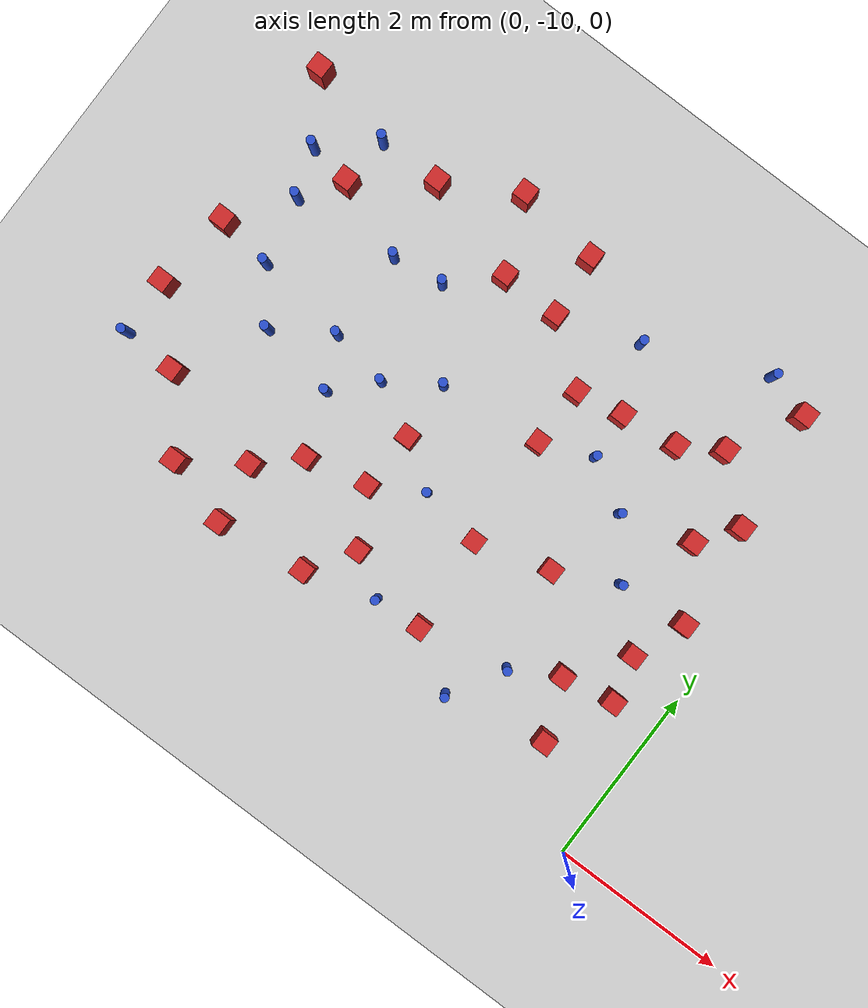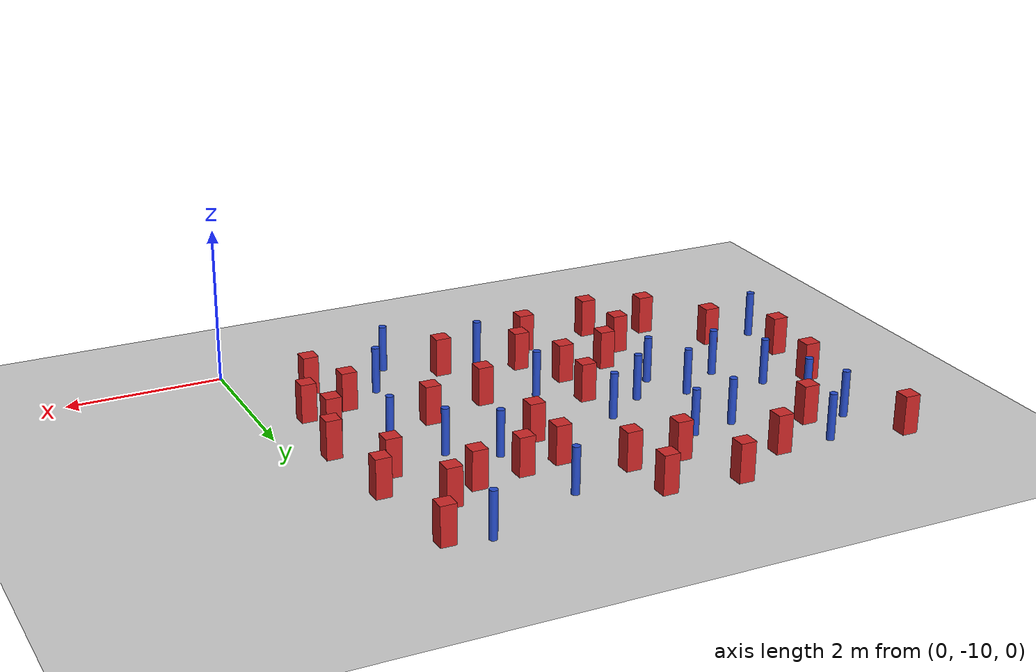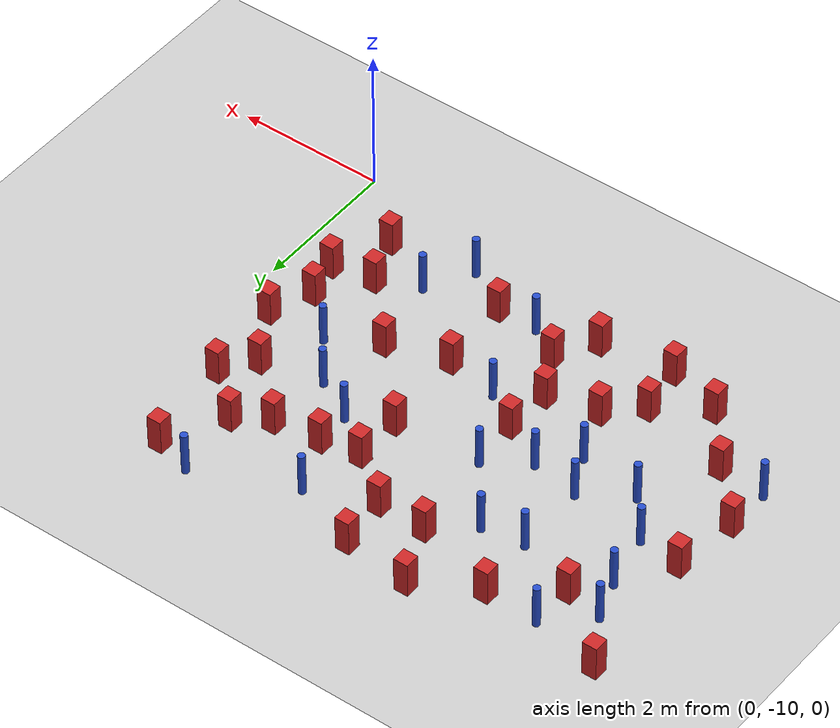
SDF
<sdf version="1.6">
 <world name="default">
  <model name="ground_plane">
   <static>1</static>
   <link name="link">
    <collision name="collision">
     <geometry><plane><normal>0 0 1</normal><size>100 100</size></plane></geometry>
     <surface><friction><ode><mu>100</mu><mu2>50</mu2></ode></friction></surface>
    </collision>
    <visual name="visual">
     <cast_shadows>0</cast_shadows>
     <geometry><plane><normal>0 0 1</normal><size>100 100</size></plane></geometry>
     <material>
      <ambient>1.0 1.0 1.0 1.0</ambient>
      <diffuse>0.8 0.8 0.8 1.0</diffuse>
      <specular>0.01 0.01 0.01 1.000000</specular>
     </material>
    </visual>
   </link>
  </model>
  <model name="square_post_obstacle11">
   <static>true</static>
   <pose>-0.571022109783 -8.41321369358 1.91545236811e-07 -7.35059704564e-06 1.12565212e-07 2.39332434364e-05</pose>
   <link name="link">
    <pose>0 0 0.25 0 -0 0</pose>
    <inertial>
     <mass>100</mass>
     <inertia>
      <ixx>0.166667</ixx>
      <ixy>0</ixy>
      <ixz>0</ixz>
      <iyy>0.166667</iyy>
      <iyz>0</iyz>
      <izz>0.166667</izz>
     </inertia>
    </inertial>
    <collision name="collision"><geometry><box><size>.2 .2 .5</size></box></geometry></collision>
    <visual name="visual">
     <geometry><box><size>.2 .2 .5</size></box></geometry>
     <material>
      <script><name>Gazebo/Red</name><uri>file://media/materials/scripts/gazebo.material</uri></script>
     </material>
    </visual>
   </link>
  </model>
  <model name="square_post_obstacle12">
   <static>true</static>
   <pose>-0.468949970906 -7.32807903634 1.91545236811e-07 -7.35059704564e-06 1.12565212e-07 2.39332434364e-05</pose>
   <link name="link">
    <pose>0 0 0.25 0 -0 0</pose>
    <inertial>
     <mass>100</mass>
     <inertia>
      <ixx>0.166667</ixx>
      <ixy>0</ixy>
      <ixz>0</ixz>
      <iyy>0.166667</iyy>
      <iyz>0</iyz>
      <izz>0.166667</izz>
     </inertia>
    </inertial>
    <collision name="collision"><geometry><box><size>.2 .2 .5</size></box></geometry></collision>
    <visual name="visual">
     <geometry><box><size>.2 .2 .5</size></box></geometry>
     <material>
      <script><name>Gazebo/Red</name><uri>file://media/materials/scripts/gazebo.material</uri></script>
     </material>
    </visual>
   </link>
  </model>
  <model name="square_post_obstacle25">
   <static>true</static>
   <pose>-1.22432231894 -5.6341398874 1.91545236811e-07 -7.35059704564e-06 1.12565212e-07 2.39332434364e-05</pose>
   <link name="link">
    <pose>0 0 0.25 0 -0 0</pose>
    <inertial>
     <mass>100</mass>
     <inertia>
      <ixx>0.166667</ixx>
      <ixy>0</ixy>
      <ixz>0</ixz>
      <iyy>0.166667</iyy>
      <iyz>0</iyz>
      <izz>0.166667</izz>
     </inertia>
    </inertial>
    <collision name="collision"><geometry><box><size>.2 .2 .5</size></box></geometry></collision>
    <visual name="visual">
     <geometry><box><size>.2 .2 .5</size></box></geometry>
     <material>
      <script><name>Gazebo/Red</name><uri>file://media/materials/scripts/gazebo.material</uri></script>
     </material>
    </visual>
   </link>
  </model>
  <model name="pole_obstacle34">
   <static>true</static>
   <pose>-5.18293998656 -6.10915039756 7.38925637345e-09 -8.47170692796e-08 1.24976764786e-08 -1.74513093032e-07</pose>
   <link name="link">
    <pose>0 0 0.3 0 -0 0</pose>
    <inertial>
     <mass>1</mass>
     <inertia><ixx>0.145833</ixx><ixy>0</ixy><ixz>0</ixz><iyy>0.145833</iyy><iyz>0</iyz><izz>0.125</izz></inertia>
    </inertial>
    <collision name="collision">
     <geometry><cylinder><radius>0.05</radius><length>.6</length></cylinder></geometry>
    </collision>
    <visual name="visual">
     <geometry><cylinder><radius>0.05</radius><length>.6</length></cylinder></geometry>
     <material>
      <script><name>Gazebo/Blue</name><uri>file://media/materials/scripts/gazebo.material</uri></script>
     </material>
    </visual>
   </link>
  </model>
  <model name="square_post_obstacle51">
   <static>true</static>
   <pose>-3.95636058278 -8.16810250475 1.91545236811e-07 -7.35059704564e-06 1.12565212e-07 2.39332434364e-05</pose>
   <link name="link">
    <pose>0 0 0.25 0 -0 0</pose>
    <inertial>
     <mass>100</mass>
     <inertia>
      <ixx>0.166667</ixx>
      <ixy>0</ixy>
      <ixz>0</ixz>
      <iyy>0.166667</iyy>
      <iyz>0</iyz>
      <izz>0.166667</izz>
     </inertia>
    </inertial>
    <collision name="collision"><geometry><box><size>.2 .2 .5</size></box></geometry></collision>
    <visual name="visual">
     <geometry><box><size>.2 .2 .5</size></box></geometry>
     <material>
      <script><name>Gazebo/Red</name><uri>file://media/materials/scripts/gazebo.material</uri></script>
     </material>
    </visual>
   </link>
  </model>
  <model name="square_post_obstacle53">
   <static>true</static>
   <pose>-1.90715955474 -7.71940245238 1.91545236811e-07 -7.35059704564e-06 1.12565212e-07 2.39332434364e-05</pose>
   <link name="link">
    <pose>0 0 0.25 0 -0 0</pose>
    <inertial>
     <mass>100</mass>
     <inertia>
      <ixx>0.166667</ixx>
      <ixy>0</ixy>
      <ixz>0</ixz>
      <iyy>0.166667</iyy>
      <iyz>0</iyz>
      <izz>0.166667</izz>
     </inertia>
    </inertial>
    <collision name="collision"><geometry><box><size>.2 .2 .5</size></box></geometry></collision>
    <visual name="visual">
     <geometry><box><size>.2 .2 .5</size></box></geometry>
     <material>
      <script><name>Gazebo/Red</name><uri>file://media/materials/scripts/gazebo.material</uri></script>
     </material>
    </visual>
   </link>
  </model>
  <model name="square_post_obstacle58">
   <static>true</static>
   <pose>-0.793374174693 -4.85994989848 1.91545236811e-07 -7.35059704564e-06 1.12565212e-07 2.39332434364e-05</pose>
   <link name="link">
    <pose>0 0 0.25 0 -0 0</pose>
    <inertial>
     <mass>100</mass>
     <inertia>
      <ixx>0.166667</ixx>
      <ixy>0</ixy>
      <ixz>0</ixz>
      <iyy>0.166667</iyy>
      <iyz>0</iyz>
      <izz>0.166667</izz>
     </inertia>
    </inertial>
    <collision name="collision"><geometry><box><size>.2 .2 .5</size></box></geometry></collision>
    <visual name="visual">
     <geometry><box><size>.2 .2 .5</size></box></geometry>
     <material>
      <script><name>Gazebo/Red</name><uri>file://media/materials/scripts/gazebo.material</uri></script>
     </material>
    </visual>
   </link>
  </model>
  <model name="square_post_obstacle66">
   <static>true</static>
   <pose>-2.81780212315 -6.73955782341 1.91545236811e-07 -7.35059704564e-06 1.12565212e-07 2.39332434364e-05</pose>
   <link name="link">
    <pose>0 0 0.25 0 -0 0</pose>
    <inertial>
     <mass>100</mass>
     <inertia>
      <ixx>0.166667</ixx>
      <ixy>0</ixy>
      <ixz>0</ixz>
      <iyy>0.166667</iyy>
      <iyz>0</iyz>
      <izz>0.166667</izz>
     </inertia>
    </inertial>
    <collision name="collision"><geometry><box><size>.2 .2 .5</size></box></geometry></collision>
    <visual name="visual">
     <geometry><box><size>.2 .2 .5</size></box></geometry>
     <material>
      <script><name>Gazebo/Red</name><uri>file://media/materials/scripts/gazebo.material</uri></script>
     </material>
    </visual>
   </link>
  </model>
  <model name="pole_obstacle66">
   <static>true</static>
   <pose>-4.50512319719 -7.22049295974 7.38925637345e-09 -8.47170692796e-08 1.24976764786e-08 -1.74513093032e-07</pose>
   <link name="link">
    <pose>0 0 0.3 0 -0 0</pose>
    <inertial>
     <mass>1</mass>
     <inertia><ixx>0.145833</ixx><ixy>0</ixy><ixz>0</ixz><iyy>0.145833</iyy><iyz>0</iyz><izz>0.125</izz></inertia>
    </inertial>
    <collision name="collision">
     <geometry><cylinder><radius>0.05</radius><length>.6</length></cylinder></geometry>
    </collision>
    <visual name="visual">
     <geometry><cylinder><radius>0.05</radius><length>.6</length></cylinder></geometry>
     <material>
      <script><name>Gazebo/Blue</name><uri>file://media/materials/scripts/gazebo.material</uri></script>
     </material>
    </visual>
   </link>
  </model>
  <model name="pole_obstacle67">
   <static>true</static>
   <pose>-1.2402873028 -7.39377180284 7.38925637345e-09 -8.47170692799e-08 1.24976765033e-08 -1.74513093018e-07</pose>
   <link name="link">
    <pose>0 0 0.3 0 -0 0</pose>
    <inertial>
     <mass>1</mass>
     <inertia><ixx>0.145833</ixx><ixy>0</ixy><ixz>0</ixz><iyy>0.145833</iyy><iyz>0</iyz><izz>0.125</izz></inertia>
    </inertial>
    <collision name="collision">
     <geometry><cylinder><radius>0.05</radius><length>.6</length></cylinder></geometry>
    </collision>
    <visual name="visual">
     <geometry><cylinder><radius>0.05</radius><length>.6</length></cylinder></geometry>
     <material>
      <script><name>Gazebo/Blue</name><uri>file://media/materials/scripts/gazebo.material</uri></script>
     </material>
    </visual>
   </link>
  </model>
  <model name="pole_obstacle71">
   <static>true</static>
   <pose>-2.58937279768 -5.26832056978 7.38925637345e-09 -8.47170692798e-08 1.24976765033e-08 -1.74513093019e-07</pose>
   <link name="link">
    <pose>0 0 0.3 0 -0 0</pose>
    <inertial>
     <mass>1</mass>
     <inertia><ixx>0.145833</ixx><ixy>0</ixy><ixz>0</ixz><iyy>0.145833</iyy><iyz>0</iyz><izz>0.125</izz></inertia>
    </inertial>
    <collision name="collision">
     <geometry><cylinder><radius>0.05</radius><length>.6</length></cylinder></geometry>
    </collision>
    <visual name="visual">
     <geometry><cylinder><radius>0.05</radius><length>.6</length></cylinder></geometry>
     <material>
      <script><name>Gazebo/Blue</name><uri>file://media/materials/scripts/gazebo.material</uri></script>
     </material>
    </visual>
   </link>
  </model>
  <model name="square_post_obstacle77">
   <static>true</static>
   <pose>-3.47305103556 -5.58351981597 1.91545236811e-07 -7.35059704564e-06 1.12565212e-07 2.39332434364e-05</pose>
   <link name="link">
    <pose>0 0 0.25 0 -0 0</pose>
    <inertial>
     <mass>100</mass>
     <inertia>
      <ixx>0.166667</ixx>
      <ixy>0</ixy>
      <ixz>0</ixz>
      <iyy>0.166667</iyy>
      <iyz>0</iyz>
      <izz>0.166667</izz>
     </inertia>
    </inertial>
    <collision name="collision"><geometry><box><size>.2 .2 .5</size></box></geometry></collision>
    <visual name="visual">
     <geometry><box><size>.2 .2 .5</size></box></geometry>
     <material>
      <script><name>Gazebo/Red</name><uri>file://media/materials/scripts/gazebo.material</uri></script>
     </material>
    </visual>
   </link>
  </model>
  <model name="square_post_obstacle78">
   <static>true</static>
   <pose>-3.92877305239 -7.51560341782 1.91545236811e-07 -7.35059704564e-06 1.12565212e-07 2.39332434364e-05</pose>
   <link name="link">
    <pose>0 0 0.25 0 -0 0</pose>
    <inertial>
     <mass>100</mass>
     <inertia>
      <ixx>0.166667</ixx>
      <ixy>0</ixy>
      <ixz>0</ixz>
      <iyy>0.166667</iyy>
      <iyz>0</iyz>
      <izz>0.166667</izz>
     </inertia>
    </inertial>
    <collision name="collision"><geometry><box><size>.2 .2 .5</size></box></geometry></collision>
    <visual name="visual">
     <geometry><box><size>.2 .2 .5</size></box></geometry>
     <material>
      <script><name>Gazebo/Red</name><uri>file://media/materials/scripts/gazebo.material</uri></script>
     </material>
    </visual>
   </link>
  </model>
  <model name="pole_obstacle84">
   <static>true</static>
   <pose>-5.77172066001 -7.50001097558 7.38925637345e-09 -8.47170692796e-08 1.24976764786e-08 -1.74513093032e-07</pose>
   <link name="link">
    <pose>0 0 0.3 0 -0 0</pose>
    <inertial>
     <mass>1</mass>
     <inertia><ixx>0.145833</ixx><ixy>0</ixy><ixz>0</ixz><iyy>0.145833</iyy><iyz>0</iyz><izz>0.125</izz></inertia>
    </inertial>
    <collision name="collision">
     <geometry><cylinder><radius>0.05</radius><length>.6</length></cylinder></geometry>
    </collision>
    <visual name="visual">
     <geometry><cylinder><radius>0.05</radius><length>.6</length></cylinder></geometry>
     <material>
      <script><name>Gazebo/Blue</name><uri>file://media/materials/scripts/gazebo.material</uri></script>
     </material>
    </visual>
   </link>
  </model>
  <model name="pole_obstacle93">
   <static>true</static>
   <pose>-3.96376057896 -6.85901524034 7.38925637345e-09 -8.47170692799e-08 1.24976764985e-08 -1.74513093022e-07</pose>
   <link name="link">
    <pose>0 0 0.3 0 -0 0</pose>
    <inertial>
     <mass>1</mass>
     <inertia><ixx>0.145833</ixx><ixy>0</ixy><ixz>0</ixz><iyy>0.145833</iyy><iyz>0</iyz><izz>0.125</izz></inertia>
    </inertial>
    <collision name="collision">
     <geometry><cylinder><radius>0.05</radius><length>.6</length></cylinder></geometry>
    </collision>
    <visual name="visual">
     <geometry><cylinder><radius>0.05</radius><length>.6</length></cylinder></geometry>
     <material>
      <script><name>Gazebo/Blue</name><uri>file://media/materials/scripts/gazebo.material</uri></script>
     </material>
    </visual>
   </link>
  </model>
  <model name="pole_obstacle95">
   <static>true</static>
   <pose>-5.16107700538 -7.10729640893 7.38925637345e-09 -8.47170692796e-08 1.24976764786e-08 -1.74513093032e-07</pose>
   <link name="link">
    <pose>0 0 0.3 0 -0 0</pose>
    <inertial>
     <mass>1</mass>
     <inertia><ixx>0.145833</ixx><ixy>0</ixy><ixz>0</ixz><iyy>0.145833</iyy><iyz>0</iyz><izz>0.125</izz></inertia>
    </inertial>
    <collision name="collision">
     <geometry><cylinder><radius>0.05</radius><length>.6</length></cylinder></geometry>
    </collision>
    <visual name="visual">
     <geometry><cylinder><radius>0.05</radius><length>.6</length></cylinder></geometry>
     <material>
      <script><name>Gazebo/Blue</name><uri>file://media/materials/scripts/gazebo.material</uri></script>
     </material>
    </visual>
   </link>
  </model>
  <model name="pole_obstacle105">
   <static>true</static>
   <pose>-2.00025541509 -9.41404464523 7.38925637345e-09 -8.47170692797e-08 1.24976764827e-08 -1.7451309303e-07</pose>
   <link name="link">
    <pose>0 0 0.3 0 -0 0</pose>
    <inertial>
     <mass>1</mass>
     <inertia><ixx>0.145833</ixx><ixy>0</ixy><ixz>0</ixz><iyy>0.145833</iyy><iyz>0</iyz><izz>0.125</izz></inertia>
    </inertial>
    <collision name="collision">
     <geometry><cylinder><radius>0.05</radius><length>.6</length></cylinder></geometry>
    </collision>
    <visual name="visual">
     <geometry><cylinder><radius>0.05</radius><length>.6</length></cylinder></geometry>
     <material>
      <script><name>Gazebo/Blue</name><uri>file://media/materials/scripts/gazebo.material</uri></script>
     </material>
    </visual>
   </link>
  </model>
  <model name="square_post_obstacle94">
   <static>true</static>
   <pose>-4.64003024459 -8.32204726033 1.91545236811e-07 -7.35059704564e-06 1.12565212e-07 2.39332434364e-05</pose>
   <link name="link">
    <pose>0 0 0.25 0 -0 0</pose>
    <inertial>
     <mass>100</mass>
     <inertia>
      <ixx>0.166667</ixx>
      <ixy>0</ixy>
      <ixz>0</ixz>
      <iyy>0.166667</iyy>
      <iyz>0</iyz>
      <izz>0.166667</izz>
     </inertia>
    </inertial>
    <collision name="collision"><geometry><box><size>.2 .2 .5</size></box></geometry></collision>
    <visual name="visual">
     <geometry><box><size>.2 .2 .5</size></box></geometry>
     <material>
      <script><name>Gazebo/Red</name><uri>file://media/materials/scripts/gazebo.material</uri></script>
     </material>
    </visual>
   </link>
  </model>
  <model name="pole_obstacle111">
   <static>true</static>
   <pose>-3.16768590234 -9.05173276898 7.38925637345e-09 -8.47170692799e-08 1.24976765012e-08 -1.74513093021e-07</pose>
   <link name="link">
    <pose>0 0 0.3 0 -0 0</pose>
    <inertial>
     <mass>1</mass>
     <inertia><ixx>0.145833</ixx><ixy>0</ixy><ixz>0</ixz><iyy>0.145833</iyy><iyz>0</iyz><izz>0.125</izz></inertia>
    </inertial>
    <collision name="collision">
     <geometry><cylinder><radius>0.05</radius><length>.6</length></cylinder></geometry>
    </collision>
    <visual name="visual">
     <geometry><cylinder><radius>0.05</radius><length>.6</length></cylinder></geometry>
     <material>
      <script><name>Gazebo/Blue</name><uri>file://media/materials/scripts/gazebo.material</uri></script>
     </material>
    </visual>
   </link>
  </model>
  <model name="square_post_obstacle99">
   <static>true</static>
   <pose>-6.94925173807 -5.0274709046 1.91545236811e-07 -7.35059704564e-06 1.12565212e-07 2.39332434364e-05</pose>
   <link name="link">
    <pose>0 0 0.25 0 -0 0</pose>
    <inertial>
     <mass>100</mass>
     <inertia>
      <ixx>0.166667</ixx>
      <ixy>0</ixy>
      <ixz>0</ixz>
      <iyy>0.166667</iyy>
      <iyz>0</iyz>
      <izz>0.166667</izz>
     </inertia>
    </inertial>
    <collision name="collision"><geometry><box><size>.2 .2 .5</size></box></geometry></collision>
    <visual name="visual">
     <geometry><box><size>.2 .2 .5</size></box></geometry>
     <material>
      <script><name>Gazebo/Red</name><uri>file://media/materials/scripts/gazebo.material</uri></script>
     </material>
    </visual>
   </link>
  </model>
  <model name="pole_obstacle117">
   <static>true</static>
   <pose>-6.91897444432 -8.41020641659 7.38925637345e-09 -8.471706928e-08 1.24976765081e-08 -1.74513093015e-07</pose>
   <link name="link">
    <pose>0 0 0.3 0 -0 0</pose>
    <inertial>
     <mass>1</mass>
     <inertia><ixx>0.145833</ixx><ixy>0</ixy><ixz>0</ixz><iyy>0.145833</iyy><iyz>0</iyz><izz>0.125</izz></inertia>
    </inertial>
    <collision name="collision">
     <geometry><cylinder><radius>0.05</radius><length>.6</length></cylinder></geometry>
    </collision>
    <visual name="visual">
     <geometry><cylinder><radius>0.05</radius><length>.6</length></cylinder></geometry>
     <material>
      <script><name>Gazebo/Blue</name><uri>file://media/materials/scripts/gazebo.material</uri></script>
     </material>
    </visual>
   </link>
  </model>
  <model name="pole_obstacle118">
   <static>true</static>
   <pose>-4.89731174849 -7.64854874305 7.38925637345e-09 -8.47170692796e-08 1.24976764786e-08 -1.74513093032e-07</pose>
   <link name="link">
    <pose>0 0 0.3 0 -0 0</pose>
    <inertial>
     <mass>1</mass>
     <inertia><ixx>0.145833</ixx><ixy>0</ixy><ixz>0</ixz><iyy>0.145833</iyy><iyz>0</iyz><izz>0.125</izz></inertia>
    </inertial>
    <collision name="collision">
     <geometry><cylinder><radius>0.05</radius><length>.6</length></cylinder></geometry>
    </collision>
    <visual name="visual">
     <geometry><cylinder><radius>0.05</radius><length>.6</length></cylinder></geometry>
     <material>
      <script><name>Gazebo/Blue</name><uri>file://media/materials/scripts/gazebo.material</uri></script>
     </material>
    </visual>
   </link>
  </model>
  <model name="pole_obstacle120">
   <static>true</static>
   <pose>-2.25642821046 -6.49770897405 7.38925637345e-09 -8.47170692798e-08 1.24976765033e-08 -1.74513093019e-07</pose>
   <link name="link">
    <pose>0 0 0.3 0 -0 0</pose>
    <inertial>
     <mass>1</mass>
     <inertia><ixx>0.145833</ixx><ixy>0</ixy><ixz>0</ixz><iyy>0.145833</iyy><iyz>0</iyz><izz>0.125</izz></inertia>
    </inertial>
    <collision name="collision">
     <geometry><cylinder><radius>0.05</radius><length>.6</length></cylinder></geometry>
    </collision>
    <visual name="visual">
     <geometry><cylinder><radius>0.05</radius><length>.6</length></cylinder></geometry>
     <material>
      <script><name>Gazebo/Blue</name><uri>file://media/materials/scripts/gazebo.material</uri></script>
     </material>
    </visual>
   </link>
  </model>
  <model name="square_post_obstacle115">
   <static>true</static>
   <pose>-4.47984360777 -4.77758022825 1.91545236811e-07 -7.35059704564e-06 1.12565212e-07 2.39332434364e-05</pose>
   <link name="link">
    <pose>0 0 0.25 0 -0 0</pose>
    <inertial>
     <mass>100</mass>
     <inertia>
      <ixx>0.166667</ixx>
      <ixy>0</ixy>
      <ixz>0</ixz>
      <iyy>0.166667</iyy>
      <iyz>0</iyz>
      <izz>0.166667</izz>
     </inertia>
    </inertial>
    <collision name="collision"><geometry><box><size>.2 .2 .5</size></box></geometry></collision>
    <visual name="visual">
     <geometry><box><size>.2 .2 .5</size></box></geometry>
     <material>
      <script><name>Gazebo/Red</name><uri>file://media/materials/scripts/gazebo.material</uri></script>
     </material>
    </visual>
   </link>
  </model>
  <model name="pole_obstacle137">
   <static>true</static>
   <pose>-3.41981864162 -7.85295257021 7.38925637345e-09 -8.47170692794e-08 1.24976764468e-08 -1.7451309304e-07</pose>
   <link name="link">
    <pose>0 0 0.3 0 -0 0</pose>
    <inertial>
     <mass>1</mass>
     <inertia><ixx>0.145833</ixx><ixy>0</ixy><ixz>0</ixz><iyy>0.145833</iyy><iyz>0</iyz><izz>0.125</izz></inertia>
    </inertial>
    <collision name="collision">
     <geometry><cylinder><radius>0.05</radius><length>.6</length></cylinder></geometry>
    </collision>
    <visual name="visual">
     <geometry><cylinder><radius>0.05</radius><length>.6</length></cylinder></geometry>
     <material>
      <script><name>Gazebo/Blue</name><uri>file://media/materials/scripts/gazebo.material</uri></script>
     </material>
    </visual>
   </link>
  </model>
  <model name="square_post_obstacle124">
   <static>true</static>
   <pose>-5.28424427471 -5.22292484134 1.91545236811e-07 -7.35059704564e-06 1.12565212e-07 2.39332434364e-05</pose>
   <link name="link">
    <pose>0 0 0.25 0 -0 0</pose>
    <inertial>
     <mass>100</mass>
     <inertia>
      <ixx>0.166667</ixx>
      <ixy>0</ixy>
      <ixz>0</ixz>
      <iyy>0.166667</iyy>
      <iyz>0</iyz>
      <izz>0.166667</izz>
     </inertia>
    </inertial>
    <collision name="collision"><geometry><box><size>.2 .2 .5</size></box></geometry></collision>
    <visual name="visual">
     <geometry><box><size>.2 .2 .5</size></box></geometry>
     <material>
      <script><name>Gazebo/Red</name><uri>file://media/materials/scripts/gazebo.material</uri></script>
     </material>
    </visual>
   </link>
  </model>
  <model name="square_post_obstacle128">
   <static>true</static>
   <pose>-4.94777632473 -9.39955459858 1.91545236811e-07 -7.35059704564e-06 1.12565212e-07 2.39332434364e-05</pose>
   <link name="link">
    <pose>0 0 0.25 0 -0 0</pose>
    <inertial>
     <mass>100</mass>
     <inertia>
      <ixx>0.166667</ixx>
      <ixy>0</ixy>
      <ixz>0</ixz>
      <iyy>0.166667</iyy>
      <iyz>0</iyz>
      <izz>0.166667</izz>
     </inertia>
    </inertial>
    <collision name="collision"><geometry><box><size>.2 .2 .5</size></box></geometry></collision>
    <visual name="visual">
     <geometry><box><size>.2 .2 .5</size></box></geometry>
     <material>
      <script><name>Gazebo/Red</name><uri>file://media/materials/scripts/gazebo.material</uri></script>
     </material>
    </visual>
   </link>
  </model>
  <model name="square_post_obstacle133">
   <static>true</static>
   <pose>-2.81794915233 -6.07907795071 1.91545236811e-07 -7.35059704564e-06 1.12565212e-07 2.39332434364e-05</pose>
   <link name="link">
    <pose>0 0 0.25 0 -0 0</pose>
    <inertial>
     <mass>100</mass>
     <inertia>
      <ixx>0.166667</ixx>
      <ixy>0</ixy>
      <ixz>0</ixz>
      <iyy>0.166667</iyy>
      <iyz>0</iyz>
      <izz>0.166667</izz>
     </inertia>
    </inertial>
    <collision name="collision"><geometry><box><size>.2 .2 .5</size></box></geometry></collision>
    <visual name="visual">
     <geometry><box><size>.2 .2 .5</size></box></geometry>
     <material>
      <script><name>Gazebo/Red</name><uri>file://media/materials/scripts/gazebo.material</uri></script>
     </material>
    </visual>
   </link>
  </model>
  <model name="square_post_obstacle134">
   <static>true</static>
   <pose>-6.03600251011 -5.78713162122 1.91545236811e-07 -7.35059704564e-06 1.12565212e-07 2.39332434364e-05</pose>
   <link name="link">
    <pose>0 0 0.25 0 -0 0</pose>
    <inertial>
     <mass>100</mass>
     <inertia>
      <ixx>0.166667</ixx>
      <ixy>0</ixy>
      <ixz>0</ixz>
      <iyy>0.166667</iyy>
      <iyz>0</iyz>
      <izz>0.166667</izz>
     </inertia>
    </inertial>
    <collision name="collision"><geometry><box><size>.2 .2 .5</size></box></geometry></collision>
    <visual name="visual">
     <geometry><box><size>.2 .2 .5</size></box></geometry>
     <material>
      <script><name>Gazebo/Red</name><uri>file://media/materials/scripts/gazebo.material</uri></script>
     </material>
    </visual>
   </link>
  </model>
  <model name="square_post_obstacle136">
   <static>true</static>
   <pose>-2.72603088471 -7.95929535682 1.91545236811e-07 -7.35059704564e-06 1.12565212e-07 2.39332434364e-05</pose>
   <link name="link">
    <pose>0 0 0.25 0 -0 0</pose>
    <inertial>
     <mass>100</mass>
     <inertia>
      <ixx>0.166667</ixx>
      <ixy>0</ixy>
      <ixz>0</ixz>
      <iyy>0.166667</iyy>
      <iyz>0</iyz>
      <izz>0.166667</izz>
     </inertia>
    </inertial>
    <collision name="collision"><geometry><box><size>.2 .2 .5</size></box></geometry></collision>
    <visual name="visual">
     <geometry><box><size>.2 .2 .5</size></box></geometry>
     <material>
      <script><name>Gazebo/Red</name><uri>file://media/materials/scripts/gazebo.material</uri></script>
     </material>
    </visual>
   </link>
  </model>
  <model name="square_post_obstacle140">
   <static>true</static>
   <pose>-6.80698486964 -6.876520282 1.91545236811e-07 -7.35059704564e-06 1.12565212e-07 2.39332434364e-05</pose>
   <link name="link">
    <pose>0 0 0.25 0 -0 0</pose>
    <inertial>
     <mass>100</mass>
     <inertia>
      <ixx>0.166667</ixx>
      <ixy>0</ixy>
      <ixz>0</ixz>
      <iyy>0.166667</iyy>
      <iyz>0</iyz>
      <izz>0.166667</izz>
     </inertia>
    </inertial>
    <collision name="collision"><geometry><box><size>.2 .2 .5</size></box></geometry></collision>
    <visual name="visual">
     <geometry><box><size>.2 .2 .5</size></box></geometry>
     <material>
      <script><name>Gazebo/Red</name><uri>file://media/materials/scripts/gazebo.material</uri></script>
     </material>
    </visual>
   </link>
  </model>
  <model name="pole_obstacle149">
   <static>true</static>
   <pose>-6.20225775344 -6.9663930543 7.38925637345e-09 -8.47170692796e-08 1.24976764786e-08 -1.74513093032e-07</pose>
   <link name="link">
    <pose>0 0 0.3 0 -0 0</pose>
    <inertial>
     <mass>1</mass>
     <inertia><ixx>0.145833</ixx><ixy>0</ixy><ixz>0</ixz><iyy>0.145833</iyy><iyz>0</iyz><izz>0.125</izz></inertia>
    </inertial>
    <collision name="collision">
     <geometry><cylinder><radius>0.05</radius><length>.6</length></cylinder></geometry>
    </collision>
    <visual name="visual">
     <geometry><cylinder><radius>0.05</radius><length>.6</length></cylinder></geometry>
     <material>
      <script><name>Gazebo/Blue</name><uri>file://media/materials/scripts/gazebo.material</uri></script>
     </material>
    </visual>
   </link>
  </model>
  <model name="pole_obstacle150">
   <static>true</static>
   <pose>-1.29459212238 -4.71398369134 7.38925637345e-09 -8.47170692799e-08 1.24976765033e-08 -1.74513093018e-07</pose>
   <link name="link">
    <pose>0 0 0.3 0 -0 0</pose>
    <inertial>
     <mass>1</mass>
     <inertia><ixx>0.145833</ixx><ixy>0</ixy><ixz>0</ixz><iyy>0.145833</iyy><iyz>0</iyz><izz>0.125</izz></inertia>
    </inertial>
    <collision name="collision">
     <geometry><cylinder><radius>0.05</radius><length>.6</length></cylinder></geometry>
    </collision>
    <visual name="visual">
     <geometry><cylinder><radius>0.05</radius><length>.6</length></cylinder></geometry>
     <material>
      <script><name>Gazebo/Blue</name><uri>file://media/materials/scripts/gazebo.material</uri></script>
     </material>
    </visual>
   </link>
  </model>
  <model name="pole_obstacle151">
   <static>true</static>
   <pose>-1.65105769026 -8.81040164746 7.38925637345e-09 -8.47170692798e-08 1.24976764881e-08 -1.74513093027e-07</pose>
   <link name="link">
    <pose>0 0 0.3 0 -0 0</pose>
    <inertial>
     <mass>1</mass>
     <inertia><ixx>0.145833</ixx><ixy>0</ixy><ixz>0</ixz><iyy>0.145833</iyy><iyz>0</iyz><izz>0.125</izz></inertia>
    </inertial>
    <collision name="collision">
     <geometry><cylinder><radius>0.05</radius><length>.6</length></cylinder></geometry>
    </collision>
    <visual name="visual">
     <geometry><cylinder><radius>0.05</radius><length>.6</length></cylinder></geometry>
     <material>
      <script><name>Gazebo/Blue</name><uri>file://media/materials/scripts/gazebo.material</uri></script>
     </material>
    </visual>
   </link>
  </model>
  <model name="square_post_obstacle141">
   <static>true</static>
   <pose>-3.95404826754 -9.27189245756 1.91545236811e-07 -7.35059704564e-06 1.12565212e-07 2.39332434364e-05</pose>
   <link name="link">
    <pose>0 0 0.25 0 -0 0</pose>
    <inertial>
     <mass>100</mass>
     <inertia>
      <ixx>0.166667</ixx>
      <ixy>0</ixy>
      <ixz>0</ixz>
      <iyy>0.166667</iyy>
      <iyz>0</iyz>
      <izz>0.166667</izz>
     </inertia>
    </inertial>
    <collision name="collision"><geometry><box><size>.2 .2 .5</size></box></geometry></collision>
    <visual name="visual">
     <geometry><box><size>.2 .2 .5</size></box></geometry>
     <material>
      <script><name>Gazebo/Red</name><uri>file://media/materials/scripts/gazebo.material</uri></script>
     </material>
    </visual>
   </link>
  </model>
  <model name="pole_obstacle153">
   <static>true</static>
   <pose>-6.35503998646 -6.22658063718 7.38925637345e-09 -8.47170692796e-08 1.24976764786e-08 -1.74513093032e-07</pose>
   <link name="link">
    <pose>0 0 0.3 0 -0 0</pose>
    <inertial>
     <mass>1</mass>
     <inertia><ixx>0.145833</ixx><ixy>0</ixy><ixz>0</ixz><iyy>0.145833</iyy><iyz>0</iyz><izz>0.125</izz></inertia>
    </inertial>
    <collision name="collision">
     <geometry><cylinder><radius>0.05</radius><length>.6</length></cylinder></geometry>
    </collision>
    <visual name="visual">
     <geometry><cylinder><radius>0.05</radius><length>.6</length></cylinder></geometry>
     <material>
      <script><name>Gazebo/Blue</name><uri>file://media/materials/scripts/gazebo.material</uri></script>
     </material>
    </visual>
   </link>
  </model>
  <model name="pole_obstacle154">
   <static>true</static>
   <pose>-6.00276383233 -5.22042016051 7.38925637345e-09 -8.47170692796e-08 1.24976764786e-08 -1.74513093032e-07</pose>
   <link name="link">
    <pose>0 0 0.3 0 -0 0</pose>
    <inertial>
     <mass>1</mass>
     <inertia><ixx>0.145833</ixx><ixy>0</ixy><ixz>0</ixz><iyy>0.145833</iyy><iyz>0</iyz><izz>0.125</izz></inertia>
    </inertial>
    <collision name="collision">
     <geometry><cylinder><radius>0.05</radius><length>.6</length></cylinder></geometry>
    </collision>
    <visual name="visual">
     <geometry><cylinder><radius>0.05</radius><length>.6</length></cylinder></geometry>
     <material>
      <script><name>Gazebo/Blue</name><uri>file://media/materials/scripts/gazebo.material</uri></script>
     </material>
    </visual>
   </link>
  </model>
  <model name="square_post_obstacle153">
   <static>true</static>
   <pose>-4.13640242403 -5.57125348897 1.91545236811e-07 -7.35059704564e-06 1.12565212e-07 2.39332434364e-05</pose>
   <link name="link">
    <pose>0 0 0.25 0 -0 0</pose>
    <inertial>
     <mass>100</mass>
     <inertia>
      <ixx>0.166667</ixx>
      <ixy>0</ixy>
      <ixz>0</ixz>
      <iyy>0.166667</iyy>
      <iyz>0</iyz>
      <izz>0.166667</izz>
     </inertia>
    </inertial>
    <collision name="collision"><geometry><box><size>.2 .2 .5</size></box></geometry></collision>
    <visual name="visual">
     <geometry><box><size>.2 .2 .5</size></box></geometry>
     <material>
      <script><name>Gazebo/Red</name><uri>file://media/materials/scripts/gazebo.material</uri></script>
     </material>
    </visual>
   </link>
  </model>
  <model name="pole_obstacle160">
   <static>true</static>
   <pose>-4.61345230355 -6.02668950579 7.38925637345e-09 -8.47170692796e-08 1.24976764786e-08 -1.74513093032e-07</pose>
   <link name="link">
    <pose>0 0 0.3 0 -0 0</pose>
    <inertial>
     <mass>1</mass>
     <inertia><ixx>0.145833</ixx><ixy>0</ixy><ixz>0</ixz><iyy>0.145833</iyy><iyz>0</iyz><izz>0.125</izz></inertia>
    </inertial>
    <collision name="collision">
     <geometry><cylinder><radius>0.05</radius><length>.6</length></cylinder></geometry>
    </collision>
    <visual name="visual">
     <geometry><cylinder><radius>0.05</radius><length>.6</length></cylinder></geometry>
     <material>
      <script><name>Gazebo/Blue</name><uri>file://media/materials/scripts/gazebo.material</uri></script>
     </material>
    </visual>
   </link>
  </model>
  <model name="square_post_obstacle158">
   <static>true</static>
   <pose>-2.29670717711 -5.98424793089 1.91545236811e-07 -7.35059704564e-06 1.12565212e-07 2.39332434364e-05</pose>
   <link name="link">
    <pose>0 0 0.25 0 -0 0</pose>
    <inertial>
     <mass>100</mass>
     <inertia>
      <ixx>0.166667</ixx>
      <ixy>0</ixy>
      <ixz>0</ixz>
      <iyy>0.166667</iyy>
      <iyz>0</iyz>
      <izz>0.166667</izz>
     </inertia>
    </inertial>
    <collision name="collision"><geometry><box><size>.2 .2 .5</size></box></geometry></collision>
    <visual name="visual">
     <geometry><box><size>.2 .2 .5</size></box></geometry>
     <material>
      <script><name>Gazebo/Red</name><uri>file://media/materials/scripts/gazebo.material</uri></script>
     </material>
    </visual>
   </link>
  </model>
  <model name="square_post_obstacle161">
   <static>true</static>
   <pose>-5.69949432464 -9.16786295809 1.91545236811e-07 -7.35059704564e-06 1.12565212e-07 2.39332434364e-05</pose>
   <link name="link">
    <pose>0 0 0.25 0 -0 0</pose>
    <inertial>
     <mass>100</mass>
     <inertia>
      <ixx>0.166667</ixx>
      <ixy>0</ixy>
      <ixz>0</ixz>
      <iyy>0.166667</iyy>
      <iyz>0</iyz>
      <izz>0.166667</izz>
     </inertia>
    </inertial>
    <collision name="collision"><geometry><box><size>.2 .2 .5</size></box></geometry></collision>
    <visual name="visual">
     <geometry><box><size>.2 .2 .5</size></box></geometry>
     <material>
      <script><name>Gazebo/Red</name><uri>file://media/materials/scripts/gazebo.material</uri></script>
     </material>
    </visual>
   </link>
  </model>
  <model name="square_post_obstacle164">
   <static>true</static>
   <pose>-3.54733114155 -4.88949259298 1.91545236811e-07 -7.35059704564e-06 1.12565212e-07 2.39332434364e-05</pose>
   <link name="link">
    <pose>0 0 0.25 0 -0 0</pose>
    <inertial>
     <mass>100</mass>
     <inertia>
      <ixx>0.166667</ixx>
      <ixy>0</ixy>
      <ixz>0</ixz>
      <iyy>0.166667</iyy>
      <iyz>0</iyz>
      <izz>0.166667</izz>
     </inertia>
    </inertial>
    <collision name="collision"><geometry><box><size>.2 .2 .5</size></box></geometry></collision>
    <visual name="visual">
     <geometry><box><size>.2 .2 .5</size></box></geometry>
     <material>
      <script><name>Gazebo/Red</name><uri>file://media/materials/scripts/gazebo.material</uri></script>
     </material>
    </visual>
   </link>
  </model>
  <model name="pole_obstacle178">
   <static>true</static>
   <pose>-6.53627377437 -5.70595188926 7.38925637345e-09 -8.47170692796e-08 1.24976764786e-08 -1.74513093032e-07</pose>
   <link name="link">
    <pose>0 0 0.3 0 -0 0</pose>
    <inertial>
     <mass>1</mass>
     <inertia><ixx>0.145833</ixx><ixy>0</ixy><ixz>0</ixz><iyy>0.145833</iyy><iyz>0</iyz><izz>0.125</izz></inertia>
    </inertial>
    <collision name="collision">
     <geometry><cylinder><radius>0.05</radius><length>.6</length></cylinder></geometry>
    </collision>
    <visual name="visual">
     <geometry><cylinder><radius>0.05</radius><length>.6</length></cylinder></geometry>
     <material>
      <script><name>Gazebo/Blue</name><uri>file://media/materials/scripts/gazebo.material</uri></script>
     </material>
    </visual>
   </link>
  </model>
  <model name="square_post_obstacle171">
   <static>true</static>
   <pose>-1.66231763373 -5.90388822308 1.91545236811e-07 -7.35059704564e-06 1.12565212e-07 2.39332434364e-05</pose>
   <link name="link">
    <pose>0 0 0.25 0 -0 0</pose>
    <inertial>
     <mass>100</mass>
     <inertia>
      <ixx>0.166667</ixx>
      <ixy>0</ixy>
      <ixz>0</ixz>
      <iyy>0.166667</iyy>
      <iyz>0</iyz>
      <izz>0.166667</izz>
     </inertia>
    </inertial>
    <collision name="collision"><geometry><box><size>.2 .2 .5</size></box></geometry></collision>
    <visual name="visual">
     <geometry><box><size>.2 .2 .5</size></box></geometry>
     <material>
      <script><name>Gazebo/Red</name><uri>file://media/materials/scripts/gazebo.material</uri></script>
     </material>
    </visual>
   </link>
  </model>
  <model name="square_post_obstacle177">
   <static>true</static>
   <pose>-0.604914774002 -6.17301471356 1.91545236811e-07 -7.35059704564e-06 1.12565212e-07 2.39332434364e-05</pose>
   <link name="link">
    <pose>0 0 0.25 0 -0 0</pose>
    <inertial>
     <mass>100</mass>
     <inertia>
      <ixx>0.166667</ixx>
      <ixy>0</ixy>
      <ixz>0</ixz>
      <iyy>0.166667</iyy>
      <iyz>0</iyz>
      <izz>0.166667</izz>
     </inertia>
    </inertial>
    <collision name="collision"><geometry><box><size>.2 .2 .5</size></box></geometry></collision>
    <visual name="visual">
     <geometry><box><size>.2 .2 .5</size></box></geometry>
     <material>
      <script><name>Gazebo/Red</name><uri>file://media/materials/scripts/gazebo.material</uri></script>
     </material>
    </visual>
   </link>
  </model>
  <model name="square_post_obstacle195">
   <static>true</static>
   <pose>-2.63483094414 -9.01442078927 1.91545236811e-07 -7.35059704564e-06 1.12565212e-07 2.39332434364e-05</pose>
   <link name="link">
    <pose>0 0 0.25 0 -0 0</pose>
    <inertial>
     <mass>100</mass>
     <inertia>
      <ixx>0.166667</ixx>
      <ixy>0</ixy>
      <ixz>0</ixz>
      <iyy>0.166667</iyy>
      <iyz>0</iyz>
      <izz>0.166667</izz>
     </inertia>
    </inertial>
    <collision name="collision"><geometry><box><size>.2 .2 .5</size></box></geometry></collision>
    <visual name="visual">
     <geometry><box><size>.2 .2 .5</size></box></geometry>
     <material>
      <script><name>Gazebo/Red</name><uri>file://media/materials/scripts/gazebo.material</uri></script>
     </material>
    </visual>
   </link>
  </model>
  <model name="square_post_obstacle202">
   <static>true</static>
   <pose>-1.1444527515 -8.52143473513 1.91545236811e-07 -7.35059704564e-06 1.12565212e-07 2.39332434364e-05</pose>
   <link name="link">
    <pose>0 0 0.25 0 -0 0</pose>
    <inertial>
     <mass>100</mass>
     <inertia>
      <ixx>0.166667</ixx>
      <ixy>0</ixy>
      <ixz>0</ixz>
      <iyy>0.166667</iyy>
      <iyz>0</iyz>
      <izz>0.166667</izz>
     </inertia>
    </inertial>
    <collision name="collision"><geometry><box><size>.2 .2 .5</size></box></geometry></collision>
    <visual name="visual">
     <geometry><box><size>.2 .2 .5</size></box></geometry>
     <material>
      <script><name>Gazebo/Red</name><uri>file://media/materials/scripts/gazebo.material</uri></script>
     </material>
    </visual>
   </link>
  </model>
  <model name="pole_obstacle188">
   <static>true</static>
   <pose>-1.69399364046 -6.81295659959 7.38925637345e-09 -8.47170692799e-08 1.24976765033e-08 -1.74513093018e-07</pose>
   <link name="link">
    <pose>0 0 0.3 0 -0 0</pose>
    <inertial>
     <mass>1</mass>
     <inertia><ixx>0.145833</ixx><ixy>0</ixy><ixz>0</ixz><iyy>0.145833</iyy><iyz>0</iyz><izz>0.125</izz></inertia>
    </inertial>
    <collision name="collision">
     <geometry><cylinder><radius>0.05</radius><length>.6</length></cylinder></geometry>
    </collision>
    <visual name="visual">
     <geometry><cylinder><radius>0.05</radius><length>.6</length></cylinder></geometry>
     <material>
      <script><name>Gazebo/Blue</name><uri>file://media/materials/scripts/gazebo.material</uri></script>
     </material>
    </visual>
   </link>
  </model>
  <model name="square_post_obstacle204">
   <static>true</static>
   <pose>-0.910391941491 -6.5957916031 1.91545236811e-07 -7.35059704564e-06 1.12565212e-07 2.39332434364e-05</pose>
   <link name="link">
    <pose>0 0 0.25 0 -0 0</pose>
    <inertial>
     <mass>100</mass>
     <inertia>
      <ixx>0.166667</ixx>
      <ixy>0</ixy>
      <ixz>0</ixz>
      <iyy>0.166667</iyy>
      <iyz>0</iyz>
      <izz>0.166667</izz>
     </inertia>
    </inertial>
    <collision name="collision"><geometry><box><size>.2 .2 .5</size></box></geometry></collision>
    <visual name="visual">
     <geometry><box><size>.2 .2 .5</size></box></geometry>
     <material>
      <script><name>Gazebo/Red</name><uri>file://media/materials/scripts/gazebo.material</uri></script>
     </material>
    </visual>
   </link>
  </model>
  <model name="square_post_obstacle205">
   <static>true</static>
   <pose>-3.62292048567 -8.75983836116 1.91545236811e-07 -7.35059704564e-06 1.12565212e-07 2.39332434364e-05</pose>
   <link name="link">
    <pose>0 0 0.25 0 -0 0</pose>
    <inertial>
     <mass>100</mass>
     <inertia>
      <ixx>0.166667</ixx>
      <ixy>0</ixy>
      <ixz>0</ixz>
      <iyy>0.166667</iyy>
      <iyz>0</iyz>
      <izz>0.166667</izz>
     </inertia>
    </inertial>
    <collision name="collision"><geometry><box><size>.2 .2 .5</size></box></geometry></collision>
    <visual name="visual">
     <geometry><box><size>.2 .2 .5</size></box></geometry>
     <material>
      <script><name>Gazebo/Red</name><uri>file://media/materials/scripts/gazebo.material</uri></script>
     </material>
    </visual>
   </link>
  </model>
  <model name="square_post_obstacle215">
   <static>true</static>
   <pose>-0.696614095025 -7.90845220122 1.91545236811e-07 -7.35059704564e-06 1.12565212e-07 2.39332434364e-05</pose>
   <link name="link">
    <pose>0 0 0.25 0 -0 0</pose>
    <inertial>
     <mass>100</mass>
     <inertia>
      <ixx>0.166667</ixx>
      <ixy>0</ixy>
      <ixz>0</ixz>
      <iyy>0.166667</iyy>
      <iyz>0</iyz>
      <izz>0.166667</izz>
     </inertia>
    </inertial>
    <collision name="collision"><geometry><box><size>.2 .2 .5</size></box></geometry></collision>
    <visual name="visual">
     <geometry><box><size>.2 .2 .5</size></box></geometry>
     <material>
      <script><name>Gazebo/Red</name><uri>file://media/materials/scripts/gazebo.material</uri></script>
     </material>
    </visual>
   </link>
  </model>
  <model name="square_post_obstacle225">
   <static>true</static>
   <pose>-6.28945311103 -8.43931518497 1.91545236811e-07 -7.35059704564e-06 1.12565212e-07 2.39332434364e-05</pose>
   <link name="link">
    <pose>0 0 0.25 0 -0 0</pose>
    <inertial>
     <mass>100</mass>
     <inertia>
      <ixx>0.166667</ixx>
      <ixy>0</ixy>
      <ixz>0</ixz>
      <iyy>0.166667</iyy>
      <iyz>0</iyz>
      <izz>0.166667</izz>
     </inertia>
    </inertial>
    <collision name="collision"><geometry><box><size>.2 .2 .5</size></box></geometry></collision>
    <visual name="visual">
     <geometry><box><size>.2 .2 .5</size></box></geometry>
     <material>
      <script><name>Gazebo/Red</name><uri>file://media/materials/scripts/gazebo.material</uri></script>
     </material>
    </visual>
   </link>
  </model>
  <model name="square_post_obstacle227">
   <static>true</static>
   <pose>-0.889578709113 -9.17144125492 1.91545236811e-07 -7.35059704564e-06 1.12565212e-07 2.39332434364e-05</pose>
   <link name="link">
    <pose>0 0 0.25 0 -0 0</pose>
    <inertial>
     <mass>100</mass>
     <inertia>
      <ixx>0.166667</ixx>
      <ixy>0</ixy>
      <ixz>0</ixz>
      <iyy>0.166667</iyy>
      <iyz>0</iyz>
      <izz>0.166667</izz>
     </inertia>
    </inertial>
    <collision name="collision"><geometry><box><size>.2 .2 .5</size></box></geometry></collision>
    <visual name="visual">
     <geometry><box><size>.2 .2 .5</size></box></geometry>
     <material>
      <script><name>Gazebo/Red</name><uri>file://media/materials/scripts/gazebo.material</uri></script>
     </material>
    </visual>
   </link>
  </model>
  <model name="square_post_obstacle229">
   <static>true</static>
   <pose>-5.05617246264 -8.72781656528 1.91545236811e-07 -7.35059704564e-06 1.12565212e-07 2.39332434364e-05</pose>
   <link name="link">
    <pose>0 0 0.25 0 -0 0</pose>
    <inertial>
     <mass>100</mass>
     <inertia>
      <ixx>0.166667</ixx>
      <ixy>0</ixy>
      <ixz>0</ixz>
      <iyy>0.166667</iyy>
      <iyz>0</iyz>
      <izz>0.166667</izz>
     </inertia>
    </inertial>
    <collision name="collision"><geometry><box><size>.2 .2 .5</size></box></geometry></collision>
    <visual name="visual">
     <geometry><box><size>.2 .2 .5</size></box></geometry>
     <material>
      <script><name>Gazebo/Red</name><uri>file://media/materials/scripts/gazebo.material</uri></script>
     </material>
    </visual>
   </link>
  </model>
  <model name="square_post_obstacle232">
   <static>true</static>
   <pose>-6.91746548717 -7.76916665236 1.91545236811e-07 -7.35059704564e-06 1.12565212e-07 2.39332434364e-05</pose>
   <link name="link">
    <pose>0 0 0.25 0 -0 0</pose>
    <inertial>
     <mass>100</mass>
     <inertia>
      <ixx>0.166667</ixx>
      <ixy>0</ixy>
      <ixz>0</ixz>
      <iyy>0.166667</iyy>
      <iyz>0</iyz>
      <izz>0.166667</izz>
     </inertia>
    </inertial>
    <collision name="collision"><geometry><box><size>.2 .2 .5</size></box></geometry></collision>
    <visual name="visual">
     <geometry><box><size>.2 .2 .5</size></box></geometry>
     <material>
      <script><name>Gazebo/Red</name><uri>file://media/materials/scripts/gazebo.material</uri></script>
     </material>
    </visual>
   </link>
  </model>
 </world>
</sdf>
